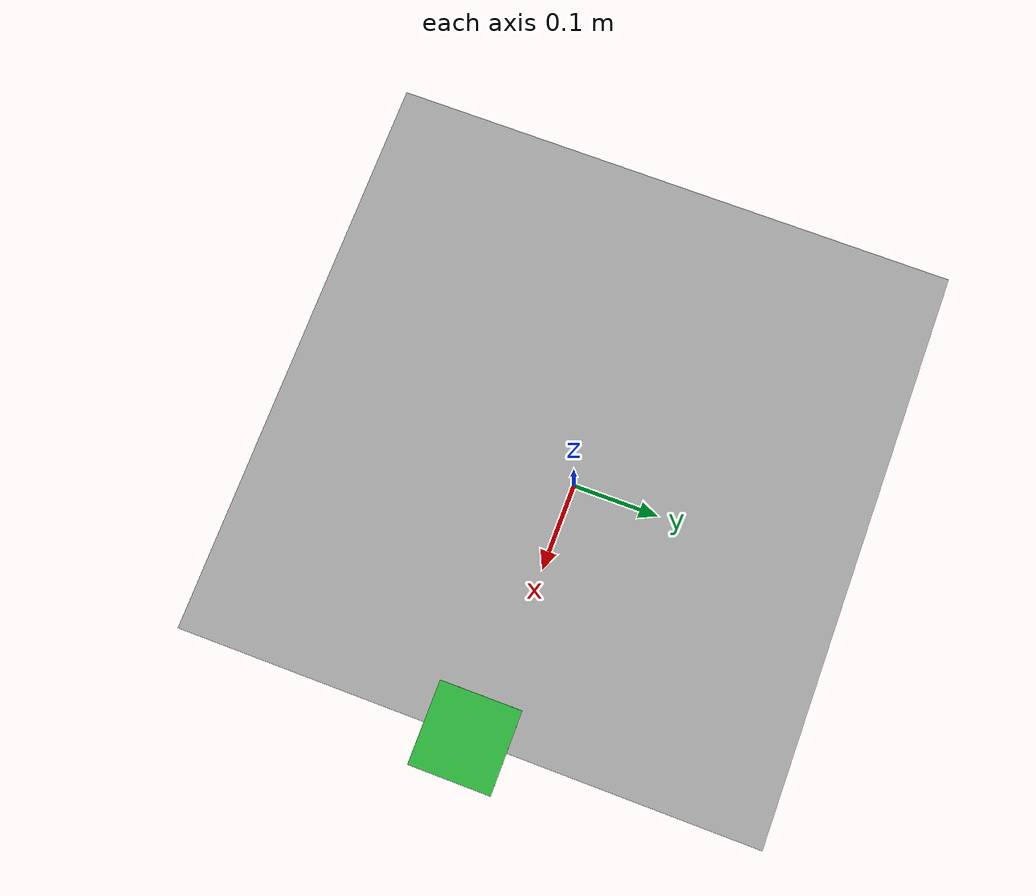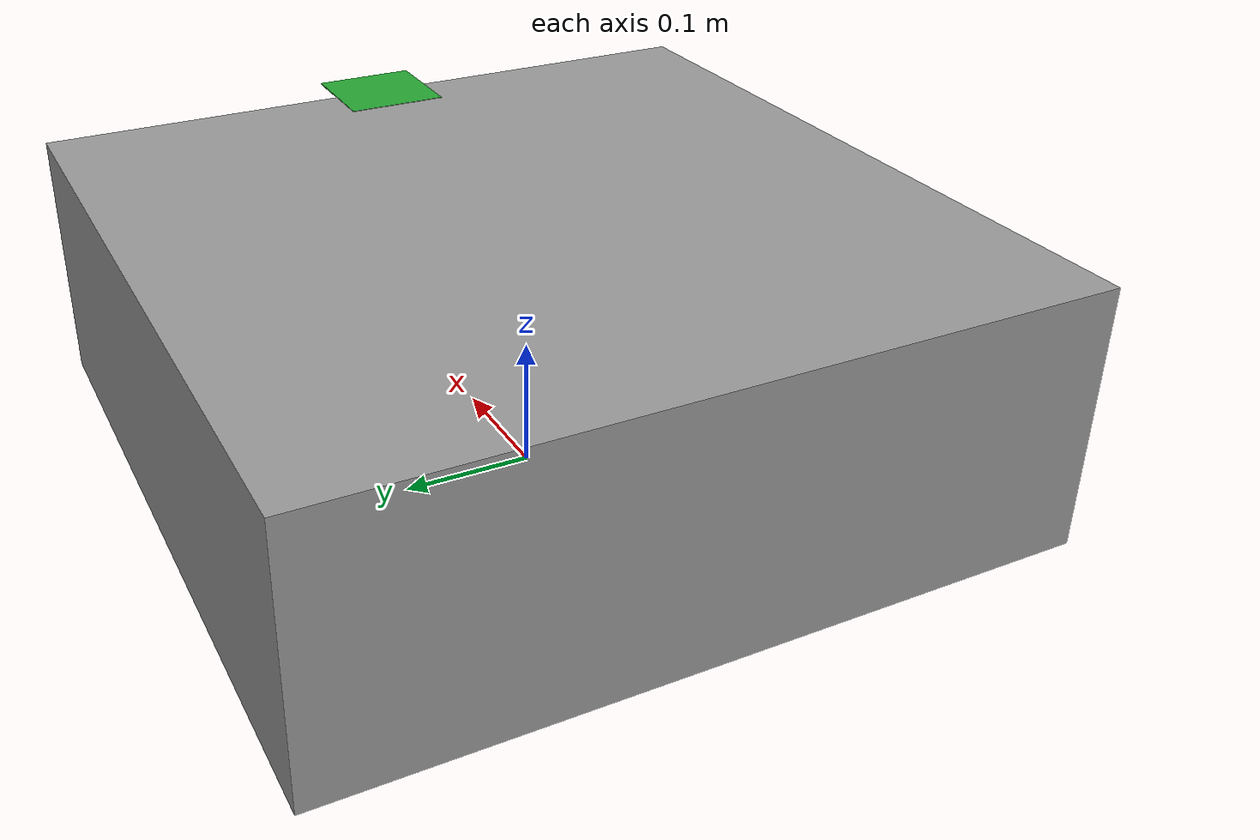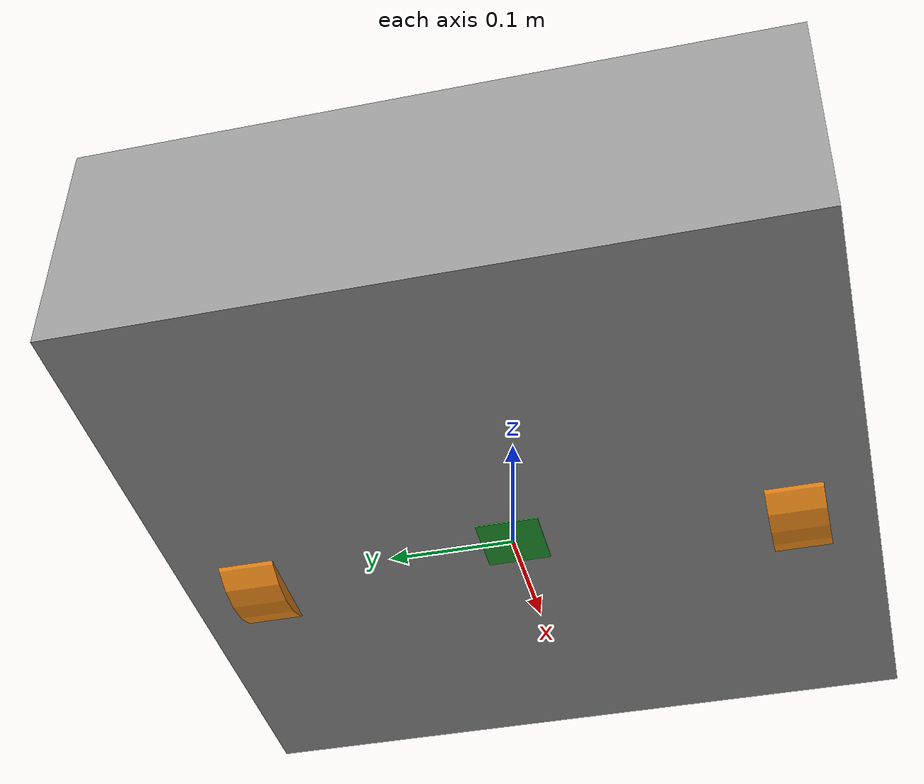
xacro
<?xml version="1.0"?>

<robot name="box_robot" xmlns:xacro="http://ros.org/wiki/xacro">

   <!-- Define a number of dimensions using properties -->
   <xacro:property name="torso_offset_x" value="0.0" />
   <xacro:property name="torso_offset_y" value="0.0" />
   <xacro:property name="torso_offset_z" value="0.23" /> <!--base_height/2+torso_height/2 -->

   <!-- Include all component files -->
   <xacro:include filename="$(find dashgo_description)/urdf/dashgobase/materials.urdf.xacro" />
   <xacro:include filename="$(find dashgo_description)/urdf/dashgobase/base.urdf.xacro" />
   <xacro:include filename="$(find dashgo_description)/urdf/dashgobase/torso.urdf.xacro" />

   <!-- Add the base and wheels -->
   <xacro:base name="base" color="Black"/>

   <!-- Attach the torso -->

  <link name="front_flag">
      <visual>
        <origin xyz="0 0 0" rpy="0 0 0" />
        <geometry>
          <box size="0.08 0.08 0.001" />
        </geometry>
        <material name="TransparentGreen" />
      </visual>
  </link>

  <joint name="front_point_flag" type="fixed">
    <!-- Keep the marker on the measured +0.283 m footprint boundary. -->
    <origin xyz="${base_x/2 - base_link_offset_x} 0 ${base_length/2}" rpy="0 0 0" />
    <parent link="base_link"/>
    <child link="front_flag" />
  </joint>

</robot>

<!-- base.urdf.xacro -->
<robot name="base" xmlns:xacro="http://ros.org/wiki/xacro">

  <!-- Define a number of dimensions using properties -->
  <!-- Measured outer chassis/wheel envelope, shared with the navigation
       footprint: [-0.283, 0.283] in base_footprint. -->
  <xacro:property name="base_x" value="0.566" />
  <xacro:property name="base_y" value="0.566" />
  <xacro:property name="base_length" value="0.20" />
  <xacro:property name="base_link_offset_x" value="0.115" />
  <xacro:property name="wheel_length" value="0.046" />
  <!-- Keep the displayed/physical wheel geometry aligned with the calibrated
       values used by dashgo_driver/config/base.yaml. -->
  <xacro:property name="wheel_radius" value="0.074" />
  <xacro:property name="wheel_offset_x" value="-0.08" />
  <xacro:property name="wheel_offset_y" value="0.2225" />
  <xacro:property name="wheel_offset_z" value="-0.038" />

  <xacro:property name="PI" value="3.1415926" />

  <!-- define a wheel -->
  <xacro:macro name="wheel" params="suffix parent reflect color">
    <joint name="${parent}_${suffix}_wheel_joint" type="continuous">
      <axis xyz="0 0 1" />
      <limit effort="100" velocity="100"/>
      <dynamics damping="0.2" friction="0.05" />
      <safety_controller k_velocity="10" />
      <origin xyz="${wheel_offset_x} ${reflect*wheel_offset_y} ${wheel_offset_z}" rpy="${-PI/2} 0 0" />
      <parent link="${parent}_link"/>
      <child link="${parent}_${suffix}_wheel_link"/>
    </joint>
    <link name="${parent}_${suffix}_wheel_link">
      <visual>
        <origin xyz="0 0 0" rpy="0 0 0" />
        <geometry>
          <cylinder radius="${wheel_radius}" length="${wheel_length}"/>
        </geometry>
        <material name="${color}" />
      </visual>
      <collision>
        <origin xyz="0 0 0" rpy="0 0 0" />
        <geometry>
          <cylinder radius="${wheel_radius}" length="${wheel_length}"/>
        </geometry>
      </collision>
      <!-- Idealized wheel mass/inertia for Gazebo. The measured drivetrain
           dimensions above remain the parameters relevant to kinematics. -->
      <inertial>
        <origin xyz="0 0 0" rpy="0 0 0" />
        <mass value="0.5" />
        <inertia ixx="0.001011" ixy="0" ixz="0"
                 iyy="0.001011" iyz="0" izz="0.001369" />
      </inertial>
    </link>
  </xacro:macro>

  <!-- The base xacro macro -->
  <xacro:macro name="base" params="name color">
    <link name="${name}_link">

        <visual>
            <!-- base_link is 0.115 m ahead of the measured footprint center. -->
            <origin xyz="${-base_link_offset_x} 0 0" rpy="0 0 0"/>
            <geometry>
                <box size="${base_x} ${base_y} ${base_length}"/>
            </geometry>
            <material name="Grey"/>
        </visual>
        <collision>
            <origin xyz="${-base_link_offset_x} 0 0" rpy="0 0 0"/>
            <geometry>
                 <box size="${base_x} ${base_y} ${base_length}"/>
            </geometry>
        </collision>
        <!-- Idealized uniform-box chassis mass/inertia. Its center is aligned
             with the measured footprint center; replace when measured. -->
        <inertial>
            <origin xyz="${-base_link_offset_x} 0 0" rpy="0 0 0"/>
            <mass value="20.0"/>
            <inertia ixx="0.600593" ixy="0" ixz="0"
                     iyy="0.600593" iyz="0" izz="1.067853"/>
        </inertial>
    </link>
  </xacro:macro>

  <link name="base_footprint">
      <visual>
        <origin xyz="0 0 0" rpy="0 0 0" />
        <geometry>
          <box size="0.05 0.05 0.001" />
        </geometry>
        <material name="TransparentGreen" />
      </visual>
  </link>

  <joint name="base_joint" type="fixed">
    <!-- Put base_footprint on the drive-wheel contact plane. -->
    <origin xyz="${base_link_offset_x} 0 ${wheel_radius - wheel_offset_z}" rpy="0 0 0" />
    <parent link="base_footprint"/>
    <child link="base_link" />
  </joint>

   <!-- Add the drive wheels -->
   <xacro:wheel parent="base" suffix="l" reflect="1" color="Orange"/>
   <xacro:wheel parent="base" suffix="r" reflect="-1" color="Orange"/>

</robot>
